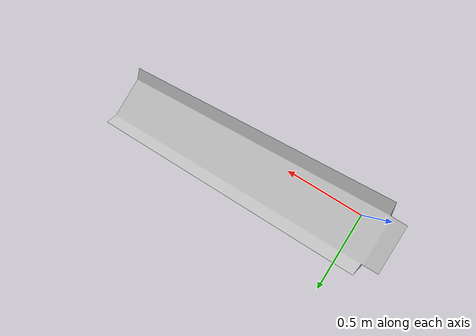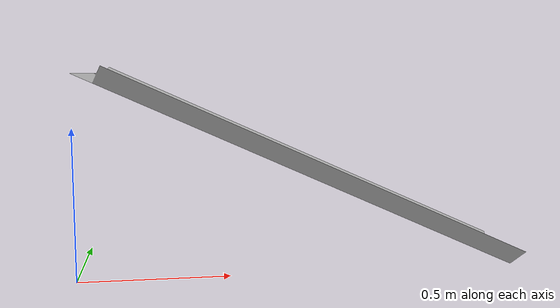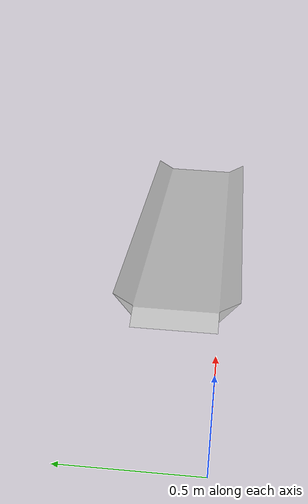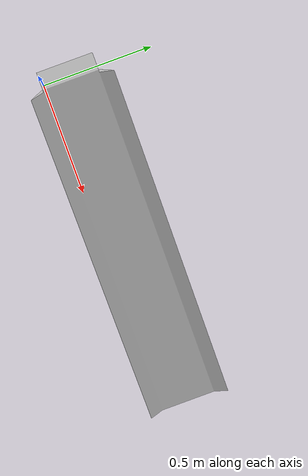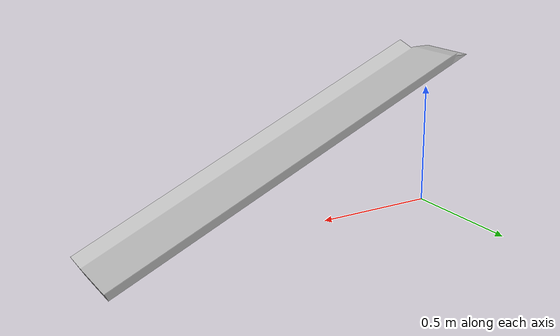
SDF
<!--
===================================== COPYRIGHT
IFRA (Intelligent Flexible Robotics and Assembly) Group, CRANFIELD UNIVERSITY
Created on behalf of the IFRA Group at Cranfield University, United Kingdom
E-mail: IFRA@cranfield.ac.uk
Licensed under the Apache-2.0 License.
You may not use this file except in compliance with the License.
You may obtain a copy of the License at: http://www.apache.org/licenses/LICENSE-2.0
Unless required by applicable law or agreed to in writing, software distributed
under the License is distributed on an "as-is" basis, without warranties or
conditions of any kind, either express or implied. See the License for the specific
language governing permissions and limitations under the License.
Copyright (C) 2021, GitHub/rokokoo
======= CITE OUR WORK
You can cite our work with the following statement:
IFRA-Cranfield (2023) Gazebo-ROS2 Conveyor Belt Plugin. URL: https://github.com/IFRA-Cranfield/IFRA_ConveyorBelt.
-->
<?xml version="1.0" ?>

<sdf version="1.4">

    <model name="conveyor_belt_ramp">
        <static>true</static>

        <link name="ramp_visual">
            <visual name="visual">
                <geometry>
                    <mesh>
                        <scale>0.001 0.0006 0.0009</scale>
                        <uri>model://ramp/meshes/ramp.dae</uri>
                    </mesh>
                </geometry>
            </visual>
            <collision name="collision">
                <origin xyz="0.0 0.0 0" rpy="0.0 0.0 0.0"/>
                <geometry>
                    <mesh>
                        <scale>0.001 0.0006 0.0009</scale>
                        <uri>model://ramp/meshes/ramp.dae</uri>
                    </mesh>
                </geometry>
            </collision>
        </link>

     </model>

</sdf>
